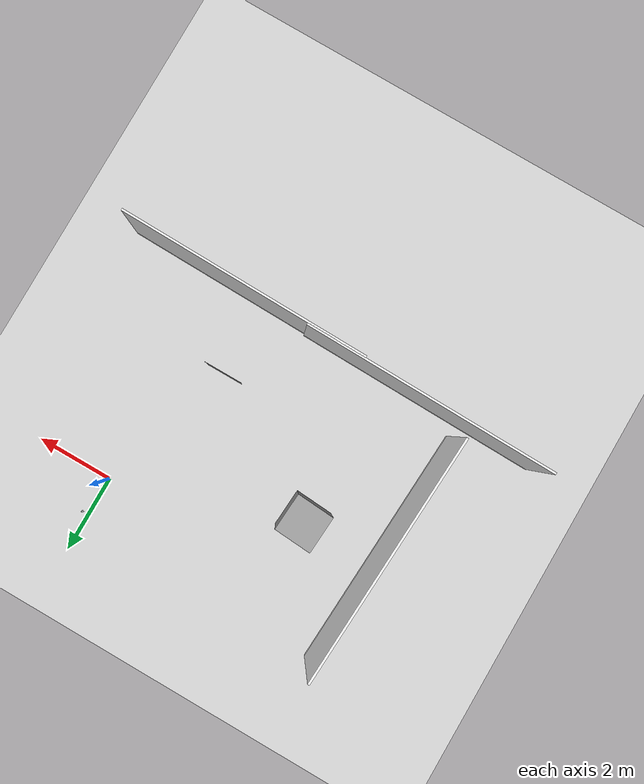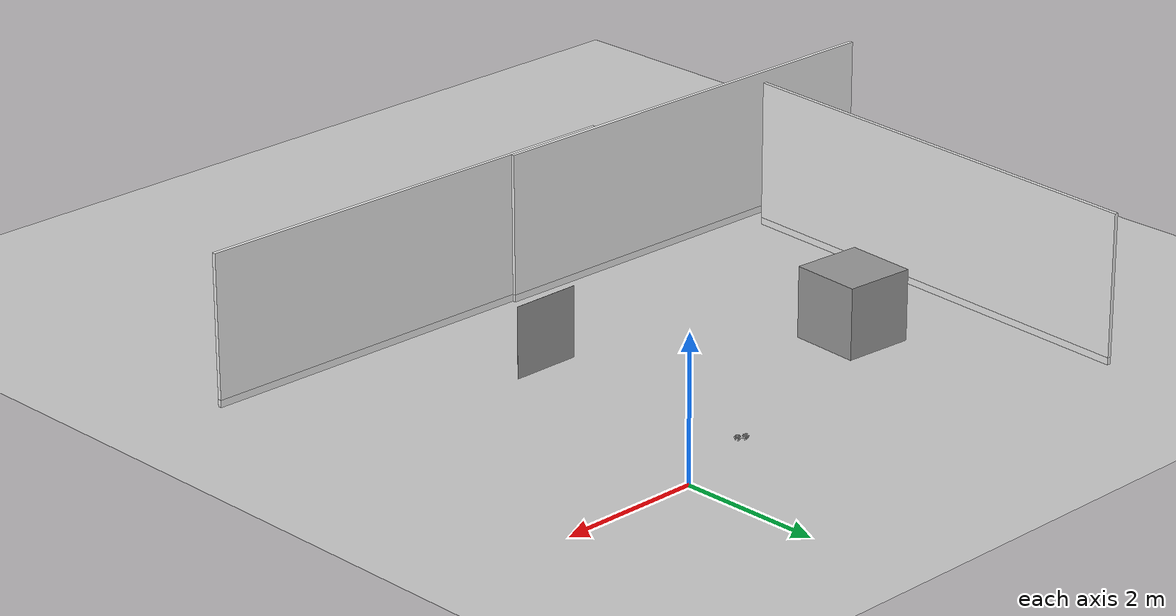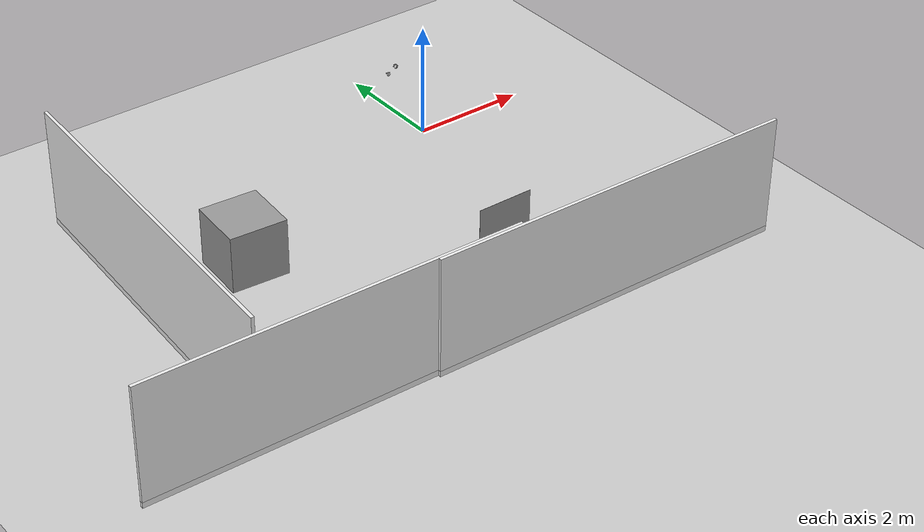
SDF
<sdf version="1.7">
 <world name="default">
  <model name="ground_plane">
   <static>1</static>
   <link name="link">
    <collision name="collision">
     <geometry><plane><normal>0 0 1</normal><size>100 100</size></plane></geometry>
     <surface><friction><ode><mu>100</mu><mu2>50</mu2></ode></friction></surface>
    </collision>
    <visual name="visual">
     <cast_shadows>0</cast_shadows>
     <geometry><plane><normal>0 0 1</normal><size>100 100</size></plane></geometry>
     <material>
      <script><uri>file://media/materials/scripts/gazebo.material</uri><name>Gazebo/Grey</name></script>
     </material>
    </visual>
   </link>
  </model>
  <model name="unit_box_clone_1">
   <pose>-1.17769 -3.71836 0.5 1e-06 -0 5e-06</pose>
   <link name="link">
    <inertial>
     <mass>1</mass>
     <inertia>
      <ixx>0.166667</ixx>
      <ixy>0</ixy>
      <ixz>0</ixz>
      <iyy>0.166667</iyy>
      <iyz>0</iyz>
      <izz>0.166667</izz>
     </inertia>
    </inertial>
    <collision name="collision"><geometry><box><size>1 0.00159558 1</size></box></geometry></collision>
    <visual name="visual">
     <geometry><box><size>1 0.00159558 1</size></box></geometry>
     <material>
      <script><name>Gazebo/Grey</name><uri>file://media/materials/scripts/gazebo.material</uri></script>
     </material>
    </visual>
   </link>
  </model>
  <model name="unit_box_0">
   <pose>-4.66361 -1.5958 0.5 0 -0 -0.068173</pose>
   <link name="link">
    <inertial>
     <mass>1</mass>
     <inertia>
      <ixx>0.166667</ixx>
      <ixy>0</ixy>
      <ixz>0</ixz>
      <iyy>0.166667</iyy>
      <iyz>0</iyz>
      <izz>0.166667</izz>
     </inertia>
    </inertial>
    <collision name="collision"><geometry><box><size>1 1 1</size></box></geometry></collision>
    <visual name="visual">
     <geometry><box><size>1 1 1</size></box></geometry>
     <material>
      <script><name>Gazebo/Grey</name><uri>file://media/materials/scripts/gazebo.material</uri></script>
     </material>
    </visual>
   </link>
  </model>
  <model name="unit_box_2">
   <pose>-0.068794 -10.6758 0.000268 -6e-06 -4e-06 0.91865</pose>
   <link name="link">
    <inertial>
     <mass>1</mass>
     <inertia>
      <ixx>0.166667</ixx>
      <ixy>0</ixy>
      <ixz>0</ixz>
      <iyy>0.166667</iyy>
      <iyz>0</iyz>
      <izz>0.166667</izz>
     </inertia>
    </inertial>
    <collision name="collision">
     <geometry><box><size>0.000679255 0.00248235 0.000536821</size></box></geometry>
    </collision>
    <visual name="visual">
     <geometry><box><size>0.000679255 0.00248235 0.000536821</size></box></geometry>
     <material>
      <script><name>Gazebo/Grey</name><uri>file://media/materials/scripts/gazebo.material</uri></script>
     </material>
    </visual>
   </link>
  </model>
  <model name="full_wall_55_6475_2090_clone_clone_0_clone_0_clone_0">
   <link name="link">
    <inertial>
     <mass>50</mass>
     <inertia><ixx>1</ixx><ixy>0</ixy><ixz>0</ixz><iyy>1</iyy><iyz>0</iyz><izz>1</izz></inertia>
    </inertial>
    <visual name="bottom_frame">
     <pose>0 0 0.05 0 -0 0</pose>
     <geometry><box><size>0.055 6.475 0.1</size></box></geometry>
     <material>
      <script><uri>model://base_materials/color/scripts</uri><name>hsr_color/white</name></script>
     </material>
    </visual>
    <collision name="collision_bottom_frame">
     <pose>0 0 0.05 0 -0 0</pose>
     <geometry><box><size>0.055 6.475 0.1</size></box></geometry>
    </collision>
    <visual name="wall">
     <pose>0 0 1.095 0 -0 0</pose>
     <geometry><box><size>0.055 6.475 1.99</size></box></geometry>
     <material>
      <script>
       <uri>model://base_materials/wall/scripts</uri>
       <uri>model://base_materials/wall/textures</uri>
       <name>wall/white_noise</name>
      </script>
     </material>
    </visual>
    <collision name="collision_wall">
     <pose>0 0 1.095 0 -0 0</pose>
     <geometry><box><size>0.055 6.475 1.99</size></box></geometry>
    </collision>
    <velocity_decay><linear>0</linear><angular>0</angular></velocity_decay>
   </link>
   <static>1</static>
   <pose>-6.58032 -1.94621 0 0 -0 3.08646</pose>
  </model>
  <model name="full_wall_55_6475_2090_clone_clone_0_clone_1">
   <link name="link">
    <inertial>
     <mass>50</mass>
     <inertia><ixx>1</ixx><ixy>0</ixy><ixz>0</ixz><iyy>1</iyy><iyz>0</iyz><izz>1</izz></inertia>
    </inertial>
    <visual name="bottom_frame">
     <pose>0 0 0.05 0 -0 0</pose>
     <geometry><box><size>0.055 6.475 0.1</size></box></geometry>
     <material>
      <script><uri>model://base_materials/color/scripts</uri><name>hsr_color/white</name></script>
     </material>
    </visual>
    <collision name="collision_bottom_frame">
     <pose>0 0 0.05 0 -0 0</pose>
     <geometry><box><size>0.055 6.475 0.1</size></box></geometry>
    </collision>
    <visual name="wall">
     <pose>0 0 1.095 0 -0 0</pose>
     <geometry><box><size>0.055 6.475 1.99</size></box></geometry>
     <material>
      <script>
       <uri>model://base_materials/wall/scripts</uri>
       <uri>model://base_materials/wall/textures</uri>
       <name>wall/white_noise</name>
      </script>
     </material>
    </visual>
    <collision name="collision_wall">
     <pose>0 0 1.095 0 -0 0</pose>
     <geometry><box><size>0.055 6.475 1.99</size></box></geometry>
    </collision>
    <velocity_decay><linear>0</linear><angular>0</angular></velocity_decay>
   </link>
   <static>1</static>
   <pose>-0.663534 -5.66991 0 0 -0 1.55299</pose>
  </model>
  <model name="full_wall_55_6475_2090_clone_clone_0_clone_2">
   <link name="link">
    <inertial>
     <mass>50</mass>
     <inertia><ixx>1</ixx><ixy>0</ixy><ixz>0</ixz><iyy>1</iyy><iyz>0</iyz><izz>1</izz></inertia>
    </inertial>
    <visual name="bottom_frame">
     <pose>0 0 0.05 0 -0 0</pose>
     <geometry><box><size>0.055 6.475 0.1</size></box></geometry>
     <material>
      <script><uri>model://base_materials/color/scripts</uri><name>hsr_color/white</name></script>
     </material>
    </visual>
    <collision name="collision_bottom_frame">
     <pose>0 0 0.05 0 -0 0</pose>
     <geometry><box><size>0.055 6.475 0.1</size></box></geometry>
    </collision>
    <visual name="wall">
     <pose>0 0 1.095 0 -0 0</pose>
     <geometry><box><size>0.055 6.475 1.99</size></box></geometry>
     <material>
      <script>
       <uri>model://base_materials/wall/scripts</uri>
       <uri>model://base_materials/wall/textures</uri>
       <name>wall/white_noise</name>
      </script>
     </material>
    </visual>
    <collision name="collision_wall">
     <pose>0 0 1.095 0 -0 0</pose>
     <geometry><box><size>0.055 6.475 1.99</size></box></geometry>
    </collision>
    <velocity_decay><linear>0</linear><angular>0</angular></velocity_decay>
   </link>
   <static>1</static>
   <pose>-5.6148 -5.53573 0 0 -0 1.55299</pose>
  </model>
  <model name="ycb_077_rubiks_cube">
   <link name="body">
    <inertial>
     <mass>0.246884</mass>
     <pose>-0.016219 -0.000485 0.02859 0 -0 0</pose>
     <inertia>
      <ixx>0.000132908</ixx>
      <ixy>1.48422e-07</ixy>
      <ixz>-9.77041e-08</ixz>
      <iyy>0.000132736</iyy>
      <iyz>6.50678e-08</iyz>
      <izz>0.000132657</izz>
     </inertia>
    </inertial>
    <visual name="ycb_077_rubiks_cube_visual">
     <geometry><mesh><uri>model://ycb_077_rubiks_cube/meshes/textured.dae</uri></mesh></geometry>
    </visual>
    <collision name="ycb_077_rubiks_cube_collision">
     <geometry><mesh><uri>model://ycb_077_rubiks_cube/meshes/nontextured.stl</uri></mesh></geometry>
    </collision>
   </link>
   <static>1</static>
   <pose>-0.20561 0.746462 0.83024 -1.62149 0.705493 -1.64889</pose>
  </model>
  <model name="ycb_077_rubiks_cube_clone_0">
   <link name="body">
    <inertial>
     <mass>0.246884</mass>
     <pose>-0.016219 -0.000485 0.02859 0 -0 0</pose>
     <inertia>
      <ixx>0.000132908</ixx>
      <ixy>1.48422e-07</ixy>
      <ixz>-9.77041e-08</ixz>
      <iyy>0.000132736</iyy>
      <iyz>6.50678e-08</iyz>
      <izz>0.000132657</izz>
     </inertia>
    </inertial>
    <visual name="ycb_077_rubiks_cube_visual">
     <geometry><mesh><uri>model://ycb_077_rubiks_cube/meshes/textured.dae</uri></mesh></geometry>
    </visual>
    <collision name="ycb_077_rubiks_cube_collision">
     <geometry><mesh><uri>model://ycb_077_rubiks_cube/meshes/nontextured.stl</uri></mesh></geometry>
    </collision>
   </link>
   <static>1</static>
   <pose>0.042823 0.830501 0.908362 -1.2249 -0.668301 1.6087</pose>
  </model>
 </world>
</sdf>
